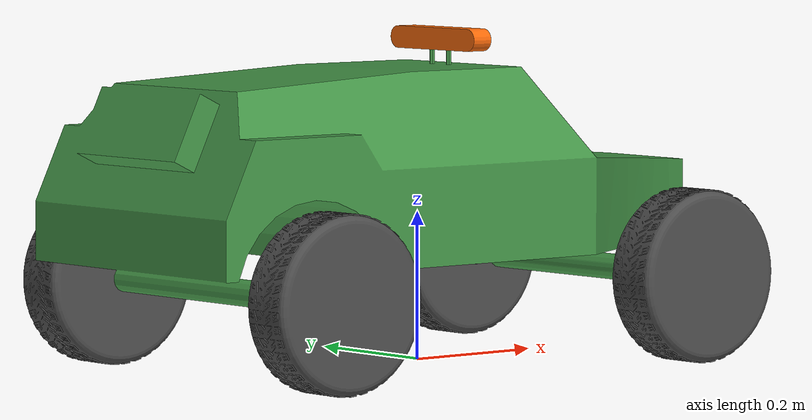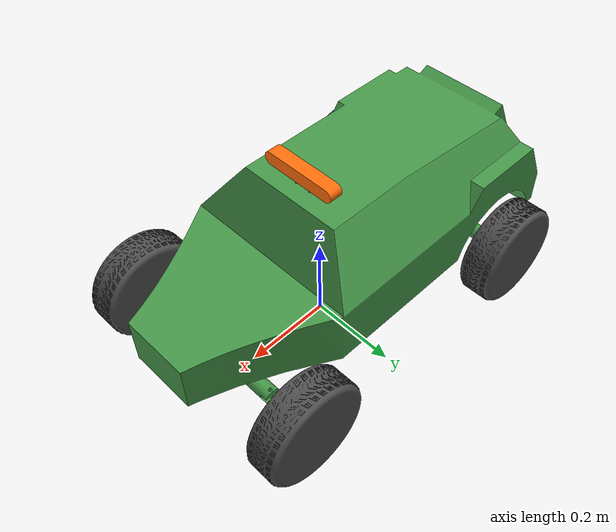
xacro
<?xml version="1.0" encoding="utf-8"?>
<robot name="suv" xmlns:xacro="http://www.ros.org/wiki/xacro">
    <xacro:include filename="$(find suv_description)/urdf/gazebo/transmission.xacro" />
    <xacro:include filename="$(find suv_description)/urdf/gazebo/link_color.xacro" />
    <xacro:include filename="$(find suv_description)/urdf/gazebo/imu.xacro" />
    <xacro:include filename="$(find suv_description)/urdf/gazebo/rgbd.xacro" />

<!-- *****************************************参数定义************************************************ -->
    <!-- 质心到前轴距离 -->
    <xacro:property name="massCenter_to_Faxis" value="0.28" />
    <!-- 质心到后轴距离 -->
    <xacro:property name="massCenter_to_Raxis" value="0.34" />
    <!-- 质心到地面距离 -->
    <xacro:property name="massCenter_to_ground" value="0.232" />
    <!-- 前后轮长度 -->
    <xacro:property name="Faxis_to_Raxis" value="0.62" />
    <!-- 左右轮距 -->
    <xacro:property name="carTread" value="0.47" />
    <!-- 轮胎直径 -->
    <xacro:property name="tire_diameter" value="0.23" />
    <!-- 轮胎宽度 -->
    <xacro:property name="tire_width" value="0.078" />
    <!-- 车体长度 -->
    <xacro:property name="car_length" value="1" />
    <!-- 车体宽度 -->
    <xacro:property name="car_width" value="0.55" />
    <!-- 车体高度 -->
    <xacro:property name="car_height" value="0.4" />
    <!-- 车体重量 -->
    <xacro:property name="car_weight" value="30.24" />
<!-- ******************************************颜色定义************************************************ -->
    <xacro:property name="Green">
        <material name="Green">
            <color rgba="0.26667 0.58824 0.28235 1" />
        </material>
    </xacro:property>
    <xacro:property name="Black">
        <material name="Black">
            <color rgba="0.0 0.0 0.0 1.0" />
        </material>
    </xacro:property>
    <xacro:property name="Grey">
        <material name="Grey">
            <color rgba="0.3 0.3 0.3 1" />
        </material>
    </xacro:property>
    <xacro:property name="White">
        <material name="White">
            <color rgba="1.0 1.0 1.0 1.0" />
        </material>
    </xacro:property>
    <xacro:property name="Orange">
        <material name="Orange">
            <color rgba="1.0 ${108/255} ${10/255} 1.0"/>
        </material>
    </xacro:property>

<!-- *****************************************base_link********************************************** -->
    <link name="base_footprint"></link>
    <joint name="base_link_to_footprint" type="fixed">
        <parent link="base_footprint" />
        <child link="base_link" />
        <origin xyz="0 0 ${massCenter_to_ground}" rpy="0 0 0" />
    </joint>
    <link name="base_link">
        <visual>
            <geometry>
                <mesh filename="package://suv_description/meshes/base_link.STL" />
            </geometry>
            <origin xyz="-0.07 0 0" rpy="0 0 -1.57" />
            <xacro:insert_block name="Green" />
        </visual>
        <collision>
            <geometry>
                <box size="${car_length} 0.28 0.10" />
            </geometry>
            <origin xyz="0 0 0" rpy="0 0 0" />
        </collision>
        <inertial>
            <origin xyz="0 0 0" rpy="0 0 0"/>
            <mass value="25"/>
            <inertia ixx="2.1042"  ixy="0"  ixz="0" iyy="2.2467" iyz="0" izz="0.1842" />
        </inertial>
    </link>

<!-- *******************************************四个轮子********************************************** -->
    <!-- 后轮宏定义，y代表轮子所处象限,1为左，-1为右 -->
    <xacro:macro name="RearWheel" params="wheel_name y">
        <joint name="${wheel_name}_wheel_joint" type="continuous">
            <parent link="base_link" />
            <child link="${wheel_name}_wheel" />
            <origin xyz="${-massCenter_to_Raxis} ${y*carTread/2} ${-(massCenter_to_ground-tire_diameter/2)}" />
            <axis xyz="0 1 0" />
            <limit effort="10" velocity="1000" />
        </joint>
        <link name="${wheel_name}_wheel">
            <visual>
                <geometry>
                    <mesh filename="package://suv_description/meshes/wheel_rl_link.STL" />
                </geometry>
                <origin xyz="0 ${-0.03*y} 0" rpy="1.57 0 ${-1.57*y}" />
                <xacro:insert_block name="Grey" />
            </visual>
            <collision>
                <geometry>
                    <cylinder radius="${tire_diameter/2}" length="${tire_width}" />
                </geometry>
                <origin xyz="0 0 0" rpy="1.57 0 0" />
            </collision>
            <inertial>
                <origin xyz="0 0 0" rpy="0 0 0"/>
                <mass value="1"/>
                <inertia ixx="4.41E-03"  ixy="0"  ixz="0" iyy="7.81E-03" iyz="0" izz="4.41E-03" />
            </inertial>
        </link>
    </xacro:macro>
    <xacro:RearWheel wheel_name="left_rear" y="1" />
    <xacro:RearWheel wheel_name="right_rear" y="-1" />

    <!-- 前轮及转向铰链宏定义，y代表轮子所处象限,1为左，-1为右 -->
    <xacro:macro name="FrontWheel" params="wheel_name y">
        <joint name="${wheel_name}_steering_hinge_joint" type="revolute">
            <parent link="base_link" />
            <child link="${wheel_name}_steering_hinge" />
            <origin xyz="${massCenter_to_Faxis} ${y*carTread/2} ${-(massCenter_to_ground-tire_diameter/2)}" />
            <axis xyz="0 0 1" />
            <limit lower="-0.6" upper="0.6" effort="5.0" velocity="1000.0" />
        </joint>
        <link name="${wheel_name}_steering_hinge">
            <visual>
                <geometry>
                    <cylinder radius="0.01" length="0.03" />
                </geometry>
                <origin xyz="0 0 0" rpy="0 0 0" />
                <xacro:insert_block name="Orange" />
            </visual>
            <collision>
                <geometry>
                    <cylinder radius="0.01" length="0.03" />
                </geometry>
                <origin xyz="0 0 0" rpy="0 0 0" />
            </collision>
            <inertial>
                <origin xyz="0 0 0" rpy="0 0 0"/>
                <mass value="0.5"/>
                <inertia ixx="5E-05"  ixy="0"  ixz="0" iyy="5E-05" iyz="0" izz="2.5E-05" />
            </inertial>
        </link>
        <joint name="${wheel_name}_wheel_joint" type="continuous">
            <parent link="${wheel_name}_steering_hinge" />
            <child link="${wheel_name}_wheel" />
            <origin xyz="0 0 0" />
            <axis xyz="0 1 0" />
            <limit effort="10" velocity="1000" />
        </joint>
        <link name="${wheel_name}_wheel">
            <visual>
                <geometry>
                    <mesh filename="package://suv_description/meshes/wheel_fl_link.STL" />
                </geometry>
                <origin xyz="0 ${-0.03*y} 0" rpy="1.57 0 ${-1.57*y}" />
                <xacro:insert_block name="Grey" />
            </visual>
            <collision>
                <geometry>
                    <cylinder radius="${tire_diameter/2}" length="${tire_width}" />
                </geometry>
                <origin xyz="0 0 0" rpy="1.57 0 0" />
            </collision>
            <inertial>
                <origin xyz="0 0 0" rpy="0 0 0"/>
                <mass value="1"/>
                <inertia ixx="4.41E-03"  ixy="0"  ixz="0" iyy="7.81E-03" iyz="0" izz="4.41E-03" />
            </inertial>
        </link>
    </xacro:macro>
    <xacro:FrontWheel wheel_name="left_front" y="1" />
    <xacro:FrontWheel wheel_name="right_front" y="-1" />

<!-- *******************************************传感器link******************************************* -->
    <!-- imu -->
    <joint name="imu_joint" type="fixed">
        <parent link="base_link" />
        <child link="imu_link" />
        <origin xyz="0 0 0.07" />
        <axis xyz="0 0 1" />
    </joint>
    <link name="imu_link">
        <visual>
            <geometry>
                <box size="0.05 0.05 0.01"/>
            </geometry>
            <origin xyz="0 0 0" rpy="0 0 0" />
            <xacro:insert_block name="Black" />
        </visual>
        <collision>
            <geometry>
                <box size="0.05 0.05 0.01"/>
            </geometry>
            <origin xyz="0 0 0" rpy="0 0 0" />
        </collision>
        <inertial>
            <origin xyz="0 0 0" rpy="0 0 0"/>
            <mass value="0.04"/>
            <inertia ixx="8.67E-06"  ixy="0"  ixz="0" iyy="1.67E-05" iyz="0" izz="8.67E-06" />
        </inertial>
    </link>

    <!-- ZED -->
    <joint name="ZED_joint" type="fixed">
        <origin xyz="0.041 0 0.196" rpy="0 0 0" />
        <parent link="base_link" />
        <child link="ZED_link" />
        <axis xyz="0 0 0" />
    </joint>
    <link name="ZED_link">
        <inertial>
            <origin xyz="0 0 0" rpy="0 0 0" />
            <mass value="0.2" />
            <inertia ixx="2.167E-05" ixy="0" ixz="0" iyy="3.9E-04" iyz="0" izz="3.817E-04" />
        </inertial>
        <visual>
            <geometry>
                <mesh filename="package://suv_description/meshes/ZED_link.STL" />
            </geometry>
            <origin xyz="0 0 -0.01" rpy="0 0 1.57" />
            <xacro:insert_block name="Orange" />
        </visual>
        <collision>
            <origin xyz="0 0 0" rpy="0 0 0" />
            <geometry>
                <box size="0.03 0.15 0.02"/>
            </geometry>
        </collision>
    </link>

</robot>
